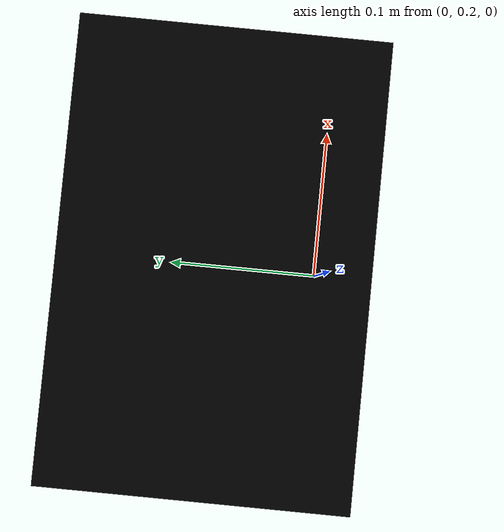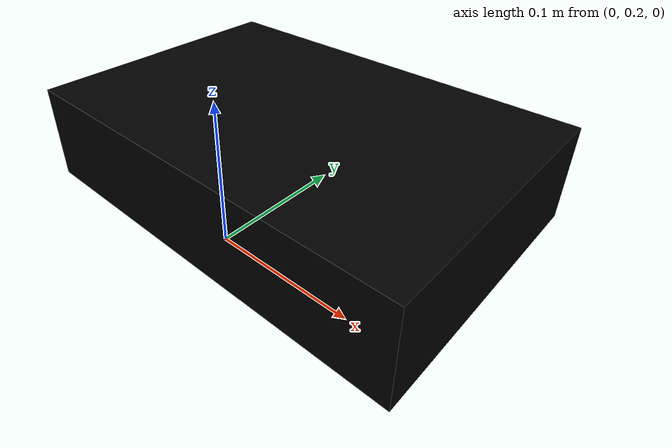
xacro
<?xml version="1.0" ?>
<robot name="box_2" xmlns:xacro="http://www.ros.org/wiki/xacro">

<link name="world"/>
<joint name="world_joint" type="fixed">
  <parent link="world"/>
  <child link="box_link"/>
</joint>

<link name="box_link">
  <inertial>
    <origin rpy="0 0 0" xyz="0.0 0.27 0.035"/>
    <mass value="5"/>
    <inertia ixx="2.99e-5" ixy="0" ixz="0" iyy="2.99e-5" iyz="0" izz="2.99e-5"/>
  </inertial>
  <visual>
    <origin rpy="0 0 0 " xyz="0.0 0.27 0.035"/>
    <geometry>
      <box size="0.3 0.2 0.07"/>
    </geometry>
    <material name="black"/>
  </visual>
  <collision>
    <origin rpy="0 0 0" xyz="0.0 0.27 0.035"/>
    <geometry>
      <box size="0.3 0.2 0.07"/>
    </geometry>
  </collision>
</link>
<xacro:property name="body_color" value="Gazebo/Black" />

<gazebo>
  <plugin name="ground_truth" filename="libgazebo_ros_p3d.so">
    <frameName>map</frameName>
    <bodyName>box_link</bodyName>
    <topicName>box_topic</topicName>
    <updateRate>30.0</updateRate>
  </plugin>
</gazebo>

<gazebo reference="object_base_link">
  <material>${body_color}</material>
  <mu1>0.2</mu1>
  <mu2>0.2</mu2>
  <selfCollide>true</selfCollide>
  <gravity>true</gravity>
</gazebo>

<material name="black">
  <color rgba="0.0 0.0 0.0 1.000"/>
</material>

</robot>
